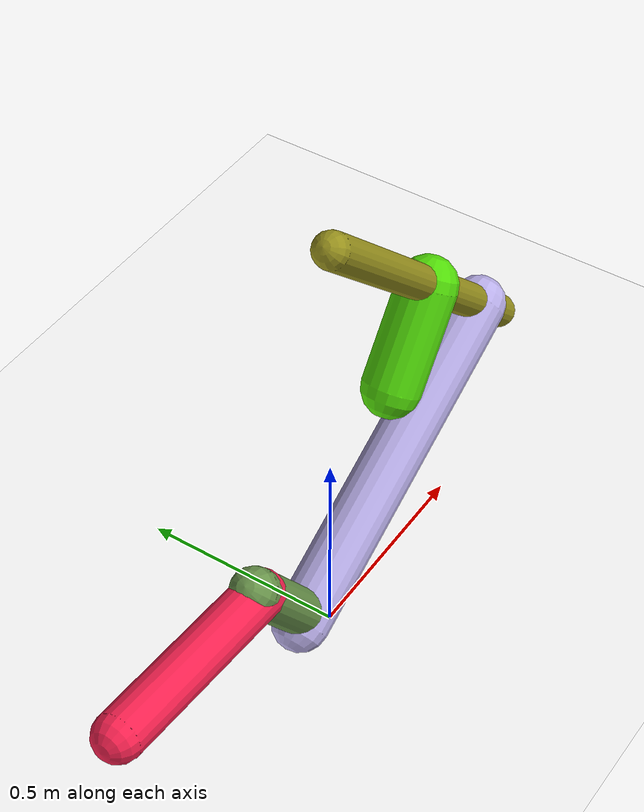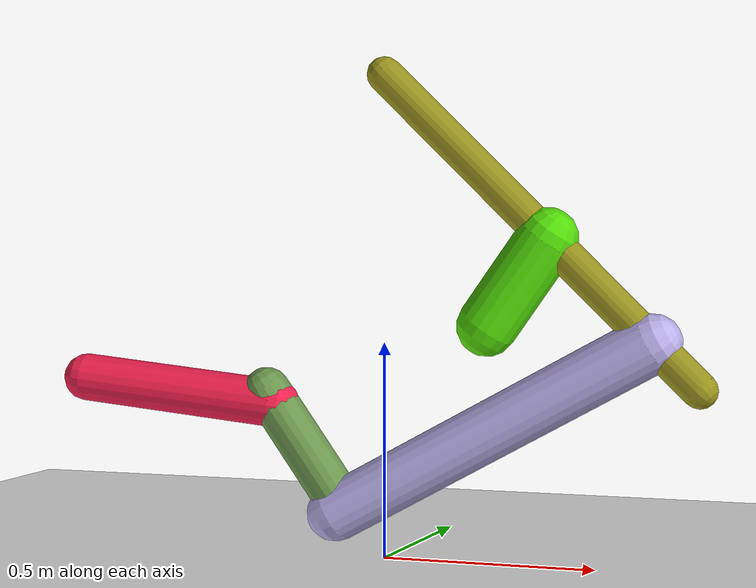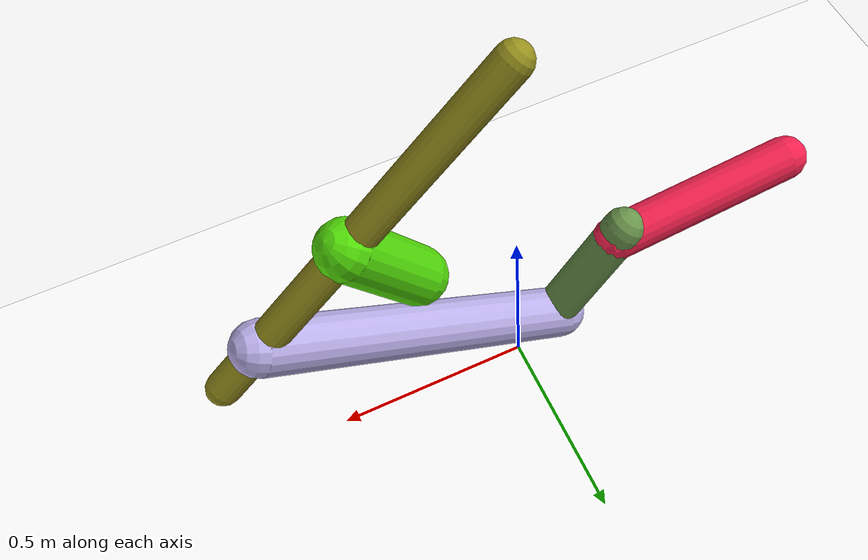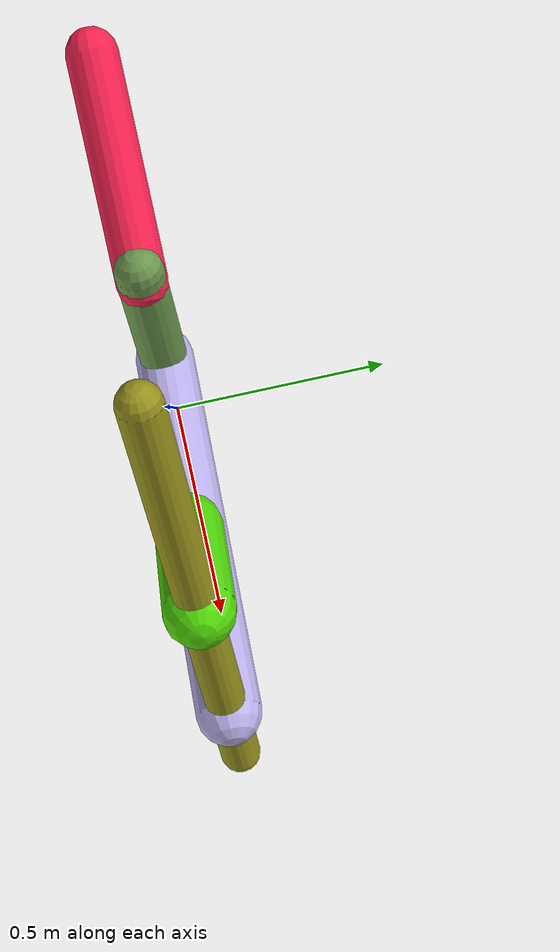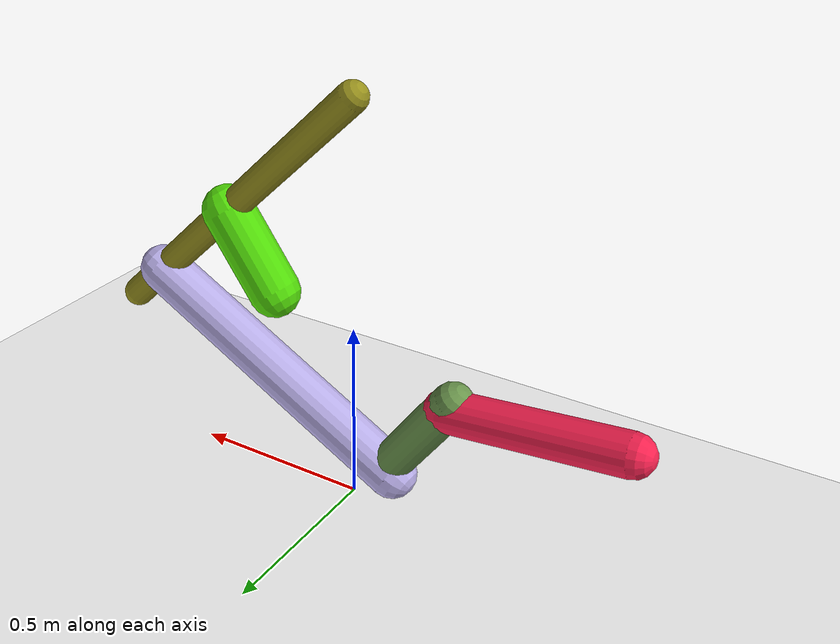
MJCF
<mujoco model="morphology">
  <option timestep="0.01"/>
  <default>
    <default class="/"/>
    <default class="0/"/>
    <default class="0/1/"/>
    <default class="0/1/2/"/>
    <default class="0/1/2/3/"/>
    <default class="0/4/"/>
  </default>
  <asset>
    <texture name="texplane" type="2d" builtin="checker" rgb1="0.10000000000000001 0.20000000000000001 0.29999999999999999" rgb2="0.20000000000000001 0.29999999999999999 0.40000000000000002" width="300" height="300"/>
    <material name="MatPlane" class="/" texture="texplane" texrepeat="20 20" specular="1" shininess="1" reflectance="0.5"/>
  </asset>
  <worldbody>
    <light name="//unnamed_light_0" class="/" directional="true" pos="0 0 1.5" dir="0 0 -1.3" cutoff="100" exponent="1" diffuse="1 1 1" specular="0.10000000000000001 0.10000000000000001 0.10000000000000001"/>
    <geom name="ground" class="/" type="plane" size="15 15 0.5" material="MatPlane" rgba="1 1 1 1"/>
    <site name="body" class="/" size="9.9999999999999995e-07 9.9999999999999995e-07 9.9999999999999995e-07" pos="0 0 1.1137214660644532"/>
    <body pos="0 0 1.1137214660644532" name="0/">
      <joint name="0/rootx/" class="/" type="slide" axis="1 0 0" limited="false" stiffness="0" armature="0" damping="0"/>
      <joint name="0/rootz/" class="/" type="slide" axis="0 0 1" limited="false" stiffness="0" armature="0" damping="0"/>
      <joint name="0/rooty/" class="/" type="hinge" axis="0 1 0" limited="false" stiffness="0" armature="0" damping="0"/>
      <geom name="0/geom" class="0/" type="capsule" contype="1" conaffinity="1" condim="3" size="0.04128487776908165" rgba="0.60453445026380537 0.57798011816131012 0.11731014856558852 1" friction="0.59999999999999998 0.10000000000000001 0.10000000000000001" fromto="0 0 0 0.73276721414570467 0 -0.70211216496354478"/>
      <site name="0/end0" class="0/" size="0.0050000000000000001" pos="0.73276721414570467 0 -0.70211216496354478"/>
      <site name="0/attach1" class="0/" size="9.9999999999999995e-07 9.9999999999999995e-07 9.9999999999999995e-07" pos="0.62687818599101131 0 -0.60065296568665894"/>
      <body pos="0.62687818599101131 0 -0.60065296568665894" name="0/1/">
        <joint name="0/1/joint/" class="0/" type="hinge" axis="0 1 0" limited="true" range="-48.521699704764131 48.521699704764131"/>
        <geom name="0/1/geom" class="0/1/" type="capsule" contype="1" conaffinity="1" condim="3" size="0.067148497734445395" rgba="0.73709499891704544 0.6947182294226637 0.92626920430903881 1" friction="0.59999999999999998 0.10000000000000001 0.10000000000000001" fromto="0 0 0 -0.74836435016027969 0 -0.41306852996801113"/>
        <site name="0/1/end1" class="0/1/" size="0.0050000000000000001" pos="-0.74836435016027969 0 -0.41306852996801113"/>
        <site name="0/1/attach2" class="0/1/" size="9.9999999999999995e-07 9.9999999999999995e-07 9.9999999999999995e-07" pos="-0.7269278382691674 0 -0.40123639438778597"/>
        <body pos="-0.7269278382691674 0 -0.40123639438778597" name="0/1/2/">
          <joint name="0/1/2/joint/" class="0/1/" type="hinge" axis="0 1 0" limited="true" range="-32.298726472278673 32.298726472278673"/>
          <geom name="0/1/2/geom" class="0/1/2/" type="capsule" contype="1" conaffinity="1" condim="3" size="0.054394509506713436" rgba="0.42329521013449867 0.59392839550038889 0.30371858051167233 1" friction="0.59999999999999998 0.10000000000000001 0.10000000000000001" fromto="0 0 0 -0.19324158258858615 0 0.26931318511190616"/>
          <site name="0/1/2/end2" class="0/1/2/" size="0.0050000000000000001" pos="-0.19324158258858615 0 0.26931318511190616"/>
          <site name="0/1/2/attach3" class="0/1/2/" size="9.9999999999999995e-07 9.9999999999999995e-07 9.9999999999999995e-07" pos="-0.17104263630457694 0 0.23837538771970165"/>
          <body pos="-0.17104263630457694 0 0.23837538771970165" name="0/1/2/3/">
            <joint name="0/1/2/3/joint/" class="0/1/2/" type="hinge" axis="0 1 0" limited="true" range="-30.743189616549369 30.743189616549369"/>
            <geom name="0/1/2/3/geom" class="0/1/2/3/" type="capsule" contype="1" conaffinity="1" condim="3" size="0.056832650617616831" rgba="0.97782106538710922 0.1323381345112149 0.31661411848083831 1" friction="0.59999999999999998 0.10000000000000001 0.10000000000000001" fromto="0 0 0 -0.48899765910787296 0 0.047958406599832415"/>
            <site name="0/1/2/3/end3" class="0/1/2/3/" size="0.0050000000000000001" pos="-0.48899765910787296 0 0.047958406599832415"/>
          </body>
        </body>
      </body>
      <site name="0/attach4" class="0/" size="9.9999999999999995e-07 9.9999999999999995e-07 9.9999999999999995e-07" pos="0.38657779347710414 0 -0.3704054524621101"/>
      <body pos="0.38657779347710414 0 -0.3704054524621101" name="0/4/">
        <geom name="0/4/geom" class="0/4/" type="capsule" contype="1" conaffinity="1" condim="3" size="0.069880229161282295" rgba="0.32719697747608723 0.87233452954203095 0.031610823842975533 1" friction="0.59999999999999998 0.10000000000000001 0.10000000000000001" fromto="0 0 0 -0.14139208148151527 0 -0.20002854845719842"/>
        <site name="0/4/end4" class="0/4/" size="0.0050000000000000001" pos="-0.14139208148151527 0 -0.20002854845719842"/>
      </body>
      <camera name="0/side" class="0/" mode="trackcom" pos="0.40000000000000002 -4 0.20000000000000001" quat="0.70699999999999996 0.70699999999999996 0 0"/>
    </body>
  </worldbody>
  <actuator>
    <motor name="0/1/motor" class="0/1/" ctrllimited="true" ctrlrange="-1 1" gear="82" joint="0/1/joint/"/>
    <motor name="0/1/2/motor" class="0/1/2/" ctrllimited="true" ctrlrange="-1 1" gear="70" joint="0/1/2/joint/"/>
    <motor name="0/1/2/3/motor" class="0/1/2/3/" ctrllimited="true" ctrlrange="-1 1" gear="59" joint="0/1/2/3/joint/"/>
  </actuator>
  <sensor>
    <subtreelinvel name="velocity" body="0/"/>
  </sensor>
</mujoco>
